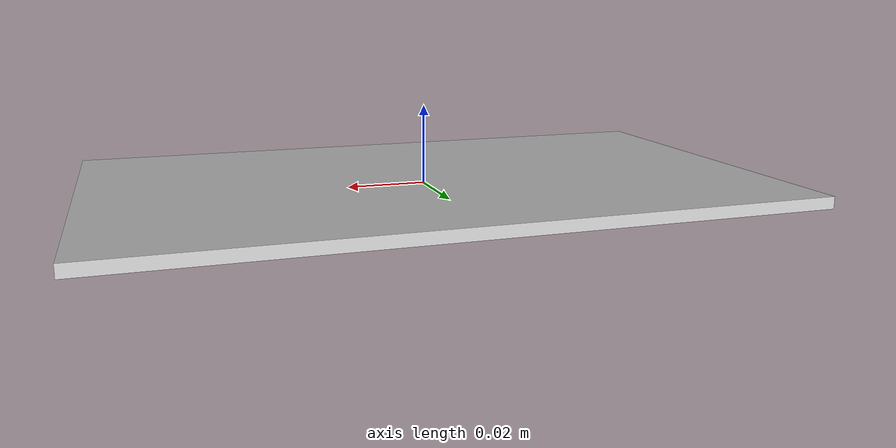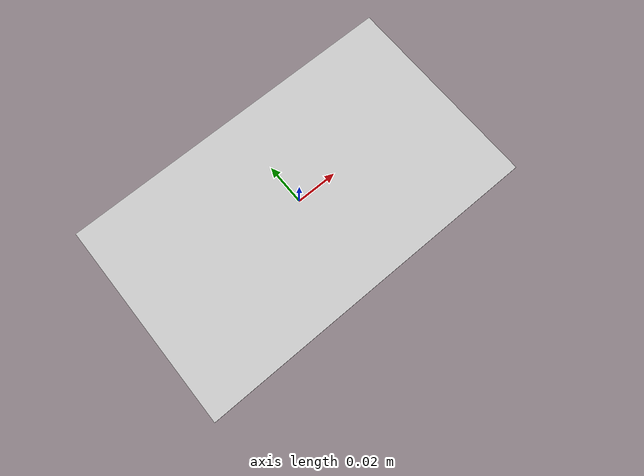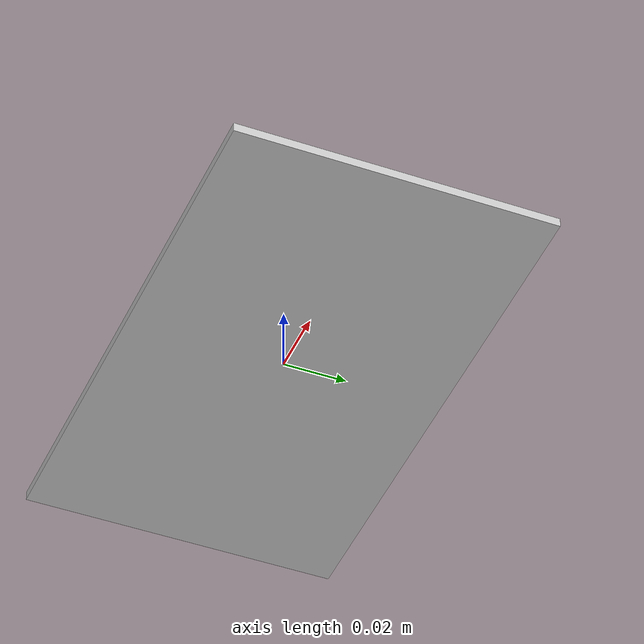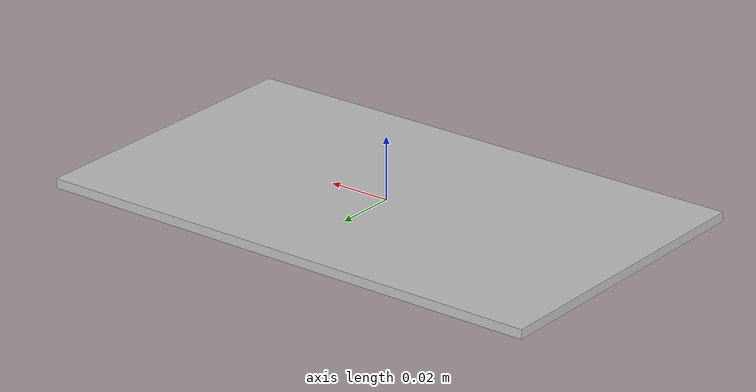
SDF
<?xml version="1.0"?>
<sdf version="1.4">
  <model name="charuco_170x100_3x6_25_18_DICT_6X6">
    <static>1</static>
    <link name="charuco">
      <pose>0 0 0 0 0 0</pose>
      <visual name="visual">
        <geometry>
          <mesh>
            <uri>model://charuco_170x100_3x6_25_18_DICT_6X6/model.dae</uri>
          </mesh>
        </geometry>
      </visual>
      <collision name="collision">
        <geometry>
          <mesh>
            <uri>model://charuco_170x100_3x6_25_18_DICT_6X6/model.dae</uri>
          </mesh>
        </geometry>
      </collision>
    </link>
  </model>
</sdf>
